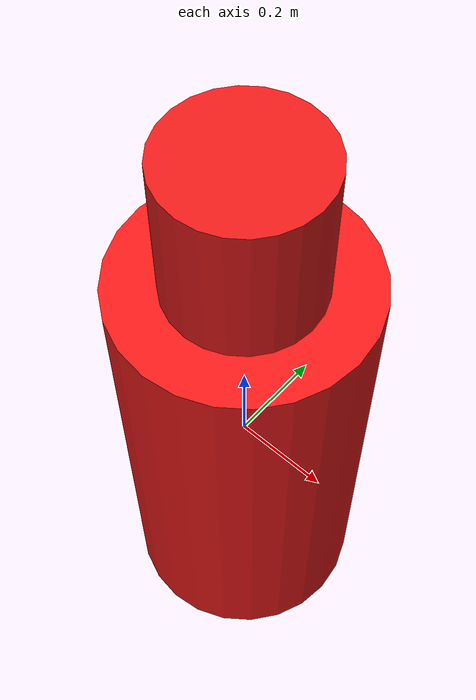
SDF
<?xml version="1.0" ?>
<sdf version="1.9">
  <model name="red_cylinder_buoy">
    <static>true</static>
    <link name="link">
      <collision name="body_collision">
        <geometry>
          <cylinder>
            <radius>0.25</radius>
            <length>1.0</length>
          </cylinder>
        </geometry>
      </collision>
      <visual name="body">
        <geometry>
          <cylinder>
            <radius>0.25</radius>
            <length>1.0</length>
          </cylinder>
        </geometry>
        <material>
          <ambient>0.8 0.05 0.05 1</ambient>
          <diffuse>0.95 0.1 0.1 1</diffuse>
        </material>
      </visual>

      <collision name="topmark_collision">
        <pose>0 0 0.65 0 0 0</pose>
        <geometry>
          <cylinder>
            <radius>0.15</radius>
            <length>0.3</length>
          </cylinder>
        </geometry>
      </collision>
      <visual name="topmark">
        <pose>0 0 0.65 0 0 0</pose>
        <geometry>
          <cylinder>
            <radius>0.15</radius>
            <length>0.3</length>
          </cylinder>
        </geometry>
        <material>
          <ambient>0.7 0.05 0.05 1</ambient>
          <diffuse>0.9 0.1 0.1 1</diffuse>
        </material>
      </visual>
    </link>
  </model>
</sdf>
